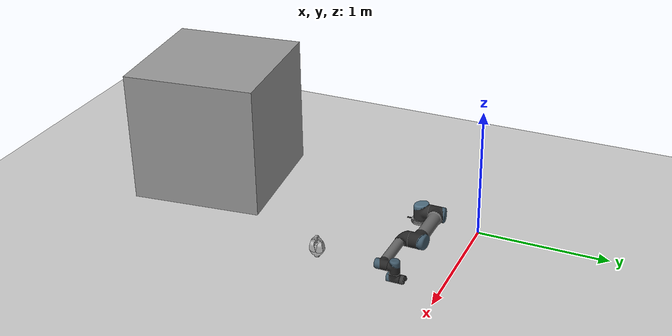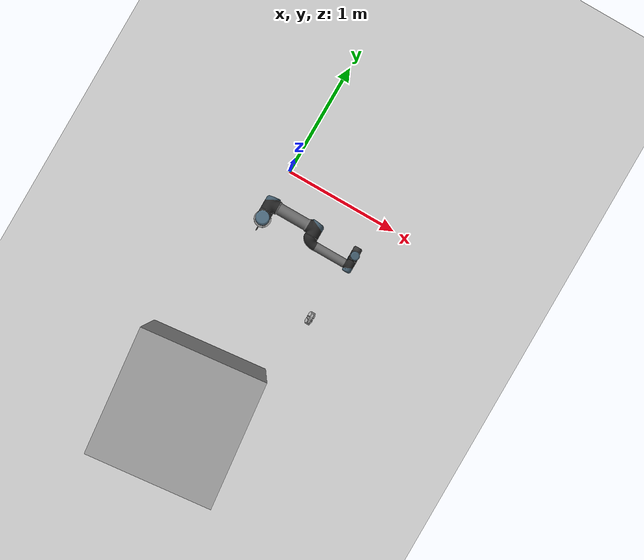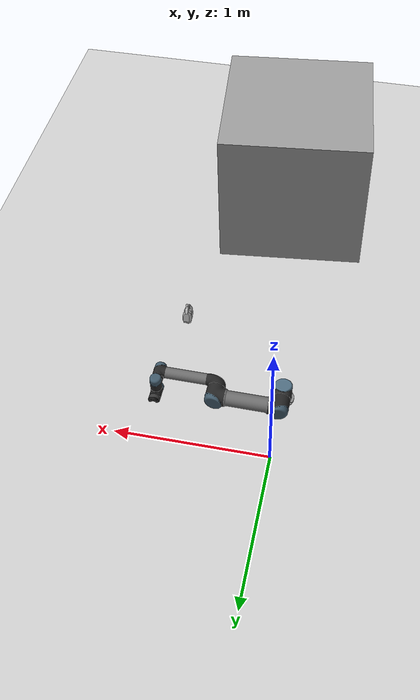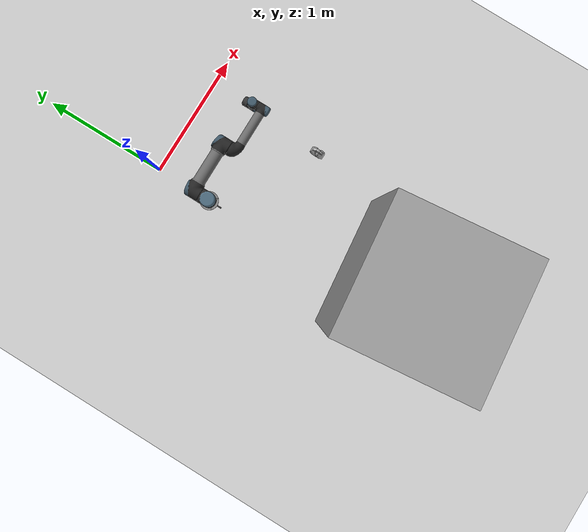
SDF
<sdf version="1.4">
 <world name="default">
  <light name="sun" type="directional">
   <pose>0 0 10 0 -0 0</pose>
   <diffuse>0.8 0.8 0.8 1</diffuse>
   <specular>0.2 0.2 0.2 1</specular>
   <attenuation>
    <range>1000</range>
    <constant>0.9</constant>
    <linear>0.01</linear>
    <quadratic>0.001</quadratic>
   </attenuation>
   <direction>-0.5 0.1 -0.9</direction>
  </light>
  <model name="ground_plane">
   <static>1</static>
   <link name="link">
    <collision name="collision">
     <geometry><plane><normal>0 0 1</normal><size>100 100</size></plane></geometry>
     <surface><friction><ode><mu>100</mu><mu2>50</mu2></ode></friction></surface>
    </collision>
    <visual name="visual">
     <cast_shadows>0</cast_shadows>
     <geometry><plane><normal>0 0 1</normal><size>100 100</size></plane></geometry>
     <material>
      <script><uri>file://media/materials/scripts/gazebo.material</uri><name>Gazebo/Grey</name></script>
     </material>
    </visual>
    <velocity_decay><linear>0</linear><angular>0</angular></velocity_decay>
   </link>
  </model>
  <physics type="ode">
   <max_step_size>0.001</max_step_size>
   <real_time_factor>1</real_time_factor>
   <real_time_update_rate>1000</real_time_update_rate>
   <gravity>0 0 -9.8</gravity>
  </physics>
  <scene><ambient>0.4 0.4 0.4 1</ambient><background>0.7 0.7 0.7 1</background><shadows>1</shadows></scene>
  <spherical_coordinates>
   <surface_model>EARTH_WGS84</surface_model>
   <latitude_deg>0</latitude_deg>
   <longitude_deg>0</longitude_deg>
   <elevation>0</elevation>
   <heading_deg>0</heading_deg>
  </spherical_coordinates>
  <model name="unit_box_1">
   <pose>0.196535 -2.06971 0.655685 -1e-06 -1.32349e-23 0.10661</pose>
   <link name="link">
    <inertial>
     <mass>1</mass>
     <inertia><ixx>1</ixx><ixy>0</ixy><ixz>0</ixz><iyy>1</iyy><iyz>0</iyz><izz>1</izz></inertia>
    </inertial>
    <collision name="collision"><geometry><box><size>0.473142 0.4627 1.31137</size></box></geometry></collision>
    <visual name="visual">
     <geometry><box><size>1 1 1</size></box></geometry>
     <material>
      <script><uri>file://media/materials/scripts/gazebo.material</uri><name>Gazebo/Grey</name></script>
     </material>
    </visual>
    <velocity_decay><linear>0</linear><angular>0</angular></velocity_decay>
   </link>
   <static>0</static>
  </model>
  <model name="ur5">
   <link name="base_link">
    <inertial>
     <mass>4</mass>
     <inertia>
      <ixx>0.00443333</ixx>
      <ixy>0</ixy>
      <ixz>0</ixz>
      <iyy>0.00443333</iyy>
      <iyz>0</iyz>
      <izz>0.0072</izz>
     </inertia>
    </inertial>
    <collision name="base_link_collision">
     <geometry><mesh><scale>1 1 1</scale><uri>model://ur5/meshes/ur5/collision/base.stl</uri></mesh></geometry>
    </collision>
    <visual name="base_link_visual">
     <geometry><mesh><scale>1 1 1</scale><uri>model://ur5/meshes/ur5/visual/Base.dae</uri></mesh></geometry>
    </visual>
    <velocity_decay><linear>0</linear><angular>0</angular></velocity_decay>
   </link>
   <joint name="world_joisnt" type="revolute">
    <child>base_link</child>
    <parent>world</parent>
    <axis>
     <limit><lower>0</lower><upper>0</upper></limit>
     <dynamics><damping>0</damping></dynamics>
     <xyz>0 0 1</xyz>
    </axis>
   </joint>
   <link name="shoulder_link">
    <pose>0 0 0.089159 0 -0 0</pose>
    <inertial>
     <mass>3.7</mass>
     <inertia>
      <ixx>0.0102675</ixx>
      <ixy>0</ixy>
      <ixz>0</ixz>
      <iyy>0.0102675</iyy>
      <iyz>0</iyz>
      <izz>0.00666</izz>
     </inertia>
    </inertial>
    <collision name="shoulder_link_collision">
     <geometry><mesh><scale>1 1 1</scale><uri>model://ur5/meshes/ur5/collision/shoulder.stl</uri></mesh></geometry>
    </collision>
    <visual name="shoulder_link_visual">
     <geometry><mesh><scale>1 1 1</scale><uri>model://ur5/meshes/ur5/visual/Shoulder.dae</uri></mesh></geometry>
    </visual>
    <velocity_decay><linear>0</linear><angular>0</angular></velocity_decay>
   </link>
   <joint name="shoulder_pan_joint" type="revolute">
    <child>shoulder_link</child>
    <parent>base_link</parent>
    <axis>
     <xyz>0 0 1</xyz>
     <limit><lower>-6.28319</lower><upper>6.28319</upper><effort>150</effort><velocity>3.15</velocity></limit>
     <dynamics><damping>0</damping></dynamics>
    </axis>
   </joint>
   <link name="upper_arm_link">
    <pose>0 0.13585 0.089159 3.14159 1.57079 3.14159</pose>
    <inertial>
     <pose>0 0 0.28 0 -0 0</pose>
     <mass>8.393</mass>
     <inertia>
      <ixx>0.226891</ixx>
      <ixy>0</ixy>
      <ixz>0</ixz>
      <iyy>0.226891</iyy>
      <iyz>0</iyz>
      <izz>0.0151074</izz>
     </inertia>
    </inertial>
    <collision name="upper_arm_link_collision">
     <geometry>
      <mesh><scale>1 1 1</scale><uri>model://ur5/meshes/ur5/collision/upper_arm.stl</uri></mesh>
     </geometry>
    </collision>
    <visual name="upper_arm_link_visual">
     <geometry><mesh><scale>1 1 1</scale><uri>model://ur5/meshes/ur5/visual/UpperArm.dae</uri></mesh></geometry>
    </visual>
    <velocity_decay><linear>0</linear><angular>0</angular></velocity_decay>
   </link>
   <joint name="shoulder_lift_joint" type="revolute">
    <child>upper_arm_link</child>
    <parent>shoulder_link</parent>
    <axis>
     <xyz>0 1 0</xyz>
     <limit><lower>-6.28319</lower><upper>6.28319</upper><effort>150</effort><velocity>3.15</velocity></limit>
     <dynamics><damping>0</damping></dynamics>
    </axis>
   </joint>
   <link name="forearm_link">
    <pose>0.425 0.01615 0.089159 3.14159 1.57079 3.14159</pose>
    <inertial>
     <pose>0 0 0.25 0 -0 0</pose>
     <mass>2.275</mass>
     <inertia>
      <ixx>0.0494433</ixx>
      <ixy>0</ixy>
      <ixz>0</ixz>
      <iyy>0.0494433</iyy>
      <iyz>0</iyz>
      <izz>0.004095</izz>
     </inertia>
    </inertial>
    <collision name="forearm_link_collision">
     <geometry><mesh><scale>1 1 1</scale><uri>model://ur5/meshes/ur5/collision/forearm.stl</uri></mesh></geometry>
    </collision>
    <visual name="forearm_link_visual">
     <geometry><mesh><scale>1 1 1</scale><uri>model://ur5/meshes/ur5/visual/Forearm.dae</uri></mesh></geometry>
    </visual>
    <velocity_decay><linear>0</linear><angular>0</angular></velocity_decay>
   </link>
   <joint name="elbow_joint" type="revolute">
    <child>forearm_link</child>
    <parent>upper_arm_link</parent>
    <axis>
     <xyz>0 1 0</xyz>
     <limit><lower>-6.28319</lower><upper>6.28319</upper><effort>150</effort><velocity>3.15</velocity></limit>
     <dynamics><damping>0</damping></dynamics>
    </axis>
   </joint>
   <link name="wrist_1_link">
    <pose>0.81725 0.01615 0.089159 3.14159 3.58979e-09 3.14159</pose>
    <inertial>
     <mass>1.219</mass>
     <inertia>
      <ixx>0.111173</ixx>
      <ixy>0</ixy>
      <ixz>0</ixz>
      <iyy>0.111173</iyy>
      <iyz>0</iyz>
      <izz>0.21942</izz>
     </inertia>
    </inertial>
    <collision name="wrist_1_link_collision">
     <geometry><mesh><scale>1 1 1</scale><uri>model://ur5/meshes/ur5/collision/wrist_1.stl</uri></mesh></geometry>
    </collision>
    <visual name="wrist_1_link_visual">
     <geometry><mesh><scale>1 1 1</scale><uri>model://ur5/meshes/ur5/visual/Wrist1.dae</uri></mesh></geometry>
    </visual>
    <velocity_decay><linear>0</linear><angular>0</angular></velocity_decay>
   </link>
   <joint name="wrist_1_joint" type="revolute">
    <child>wrist_1_link</child>
    <parent>forearm_link</parent>
    <axis>
     <xyz>0 1 0</xyz>
     <limit><lower>-6.28319</lower><upper>6.28319</upper><effort>28</effort><velocity>3.2</velocity></limit>
     <dynamics><damping>0</damping></dynamics>
    </axis>
   </joint>
   <link name="wrist_2_link">
    <pose>0.81725 0.10915 0.089159 3.14159 3.58979e-09 3.14159</pose>
    <inertial>
     <mass>1.219</mass>
     <inertia>
      <ixx>0.111173</ixx>
      <ixy>0</ixy>
      <ixz>0</ixz>
      <iyy>0.111173</iyy>
      <iyz>0</iyz>
      <izz>0.21942</izz>
     </inertia>
    </inertial>
    <collision name="wrist_2_link_collision">
     <geometry><mesh><scale>1 1 1</scale><uri>model://ur5/meshes/ur5/collision/wrist_2.stl</uri></mesh></geometry>
    </collision>
    <visual name="wrist_2_link_visual">
     <geometry><mesh><scale>1 1 1</scale><uri>model://ur5/meshes/ur5/visual/Wrist2.dae</uri></mesh></geometry>
    </visual>
    <velocity_decay><linear>0</linear><angular>0</angular></velocity_decay>
   </link>
   <joint name="wrist_2_joint" type="revolute">
    <child>wrist_2_link</child>
    <parent>wrist_1_link</parent>
    <axis>
     <xyz>0 0 -1</xyz>
     <limit><lower>-6.28319</lower><upper>6.28319</upper><effort>28</effort><velocity>3.2</velocity></limit>
     <dynamics><damping>0</damping></dynamics>
    </axis>
   </joint>
   <link name="wrist_3_link">
    <pose>0.81725 0.10915 -0.005491 3.14159 3.58979e-09 3.14159</pose>
    <inertial>
     <mass>0.1879</mass>
     <inertia>
      <ixx>0.0171365</ixx>
      <ixy>0</ixy>
      <ixz>0</ixz>
      <iyy>0.0171365</iyy>
      <iyz>0</iyz>
      <izz>0.033822</izz>
     </inertia>
    </inertial>
    <collision name="wrist_3_link_collision">
     <geometry><mesh><scale>1 1 1</scale><uri>model://ur5/meshes/ur5/collision/wrist_3.stl</uri></mesh></geometry>
    </collision>
    <collision name="wrist_3_link_collision_ee_link">
     <pose>-1.7949e-11 0.0723 0 0 -0 1.5708</pose>
     <geometry><box><size>0.01 0.01 0.01</size></box></geometry>
    </collision>
    <visual name="wrist_3_link_visual">
     <geometry><mesh><scale>1 1 1</scale><uri>model://ur5/meshes/ur5/visual/Wrist3.dae</uri></mesh></geometry>
    </visual>
    <velocity_decay><linear>0</linear><angular>0</angular></velocity_decay>
   </link>
   <joint name="wrist_3_joint" type="revolute">
    <child>wrist_3_link</child>
    <parent>wrist_2_link</parent>
    <axis>
     <xyz>0 1 0</xyz>
     <limit><lower>-6.28319</lower><upper>6.28319</upper><effort>28</effort><velocity>3.2</velocity></limit>
     <dynamics><damping>0</damping></dynamics>
    </axis>
   </joint>
   <static>0</static>
   <plugin name="ros_control" filename="libgazebo_ros_control.so"/>
   <pose>-0.001677 -0.457375 0.002264 -0.00538 -0.012113 0.000129</pose>
  </model>
  <model name="pr2_gripper">
   <pose>1.54297 -0.785836 -0.795795 2.35749 -1.57079 -2.35203</pose>
   <link name="r_wrist_roll_link">
    <pose>0.771 -0.188 0.790675 0 -0 0</pose>
    <inertial>
     <pose>0.056408 0.000451 -0.001014 0 -0 0</pose>
     <inertia>
      <ixx>0.011352</ixx>
      <ixy>-1.6e-05</ixy>
      <ixz>-1e-06</ixz>
      <iyy>0.011677</iyy>
      <iyz>-1e-06</iyz>
      <izz>0.011866</izz>
     </inertia>
     <mass>0.68107</mass>
    </inertial>
    <collision name="r_wrist_roll_link_geom">
     <geometry>
      <mesh>
       <uri>model://pr2/meshes/forearm_v0/wrist_roll_L.stl</uri>
       <scale>1 1 1</scale>
       <uri>__default__</uri>
      </mesh>
     </geometry>
     <surface>
      <friction><ode><mu>-1</mu><mu2>-1</mu2><fdir1>0 0 0</fdir1><slip1>0</slip1><slip2>0</slip2></ode></friction>
      <bounce><restitution_coefficient>0</restitution_coefficient><threshold>100000</threshold></bounce>
      <contact>
       <ode>
        <soft_cfm>0</soft_cfm>
        <soft_erp>0.2</soft_erp>
        <kp>1e+12</kp>
        <kd>1</kd>
        <max_vel>0</max_vel>
        <min_depth>0.001</min_depth>
       </ode>
      </contact>
     </surface>
    </collision>
    <visual name="r_wrist_roll_link_geom_visual">
     <geometry>
      <mesh><uri>model://pr2/meshes/forearm_v0/wrist_roll.stl</uri><scale>1 1 1</scale><uri>__default__</uri></mesh>
     </geometry>
     <material><script><name>__default__</name><uri>__default__</uri></script></material>
    </visual>
    <visual name="r_wrist_roll_link_geom_r_gripper_palm_link_visual">
     <geometry>
      <mesh>
       <uri>model://pr2/meshes/gripper_v0/gripper_palm.dae</uri>
       <scale>1 1 1</scale>
       <uri>__default__</uri>
      </mesh>
     </geometry>
    </visual>
    <velocity_decay><linear>0</linear><angular>0</angular></velocity_decay>
   </link>
   <link name="r_gripper_l_finger_link">
    <pose>0.84791 -0.178 0.790675 0 -0 0</pose>
    <inertial>
     <pose>0.03598 0.0173 -0.00164 0 -0 0</pose>
     <inertia>
      <ixx>7.8e-05</ixx>
      <ixy>1e-06</ixy>
      <ixz>-1e-05</ixz>
      <iyy>0.000197</iyy>
      <iyz>-3e-06</iyz>
      <izz>0.000181</izz>
     </inertia>
     <mass>0.17126</mass>
    </inertial>
    <collision name="r_gripper_l_finger_link_geom">
     <geometry>
      <mesh><uri>model://pr2/meshes/gripper_v0/l_finger.stl</uri><scale>1 1 1</scale><uri>__default__</uri></mesh>
     </geometry>
     <surface>
      <friction><ode><mu>500</mu><mu2>500</mu2><fdir1>0 0 0</fdir1><slip1>0</slip1><slip2>0</slip2></ode></friction>
      <bounce><restitution_coefficient>0</restitution_coefficient><threshold>100000</threshold></bounce>
      <contact>
       <ode>
        <soft_cfm>0</soft_cfm>
        <soft_erp>0.2</soft_erp>
        <kp>1e+06</kp>
        <kd>1</kd>
        <max_vel>0</max_vel>
        <min_depth>0.001</min_depth>
       </ode>
      </contact>
     </surface>
    </collision>
    <visual name="r_gripper_l_finger_link_geom_visual">
     <geometry>
      <mesh><uri>model://pr2/meshes/gripper_v0/l_finger.dae</uri><scale>1 1 1</scale><uri>__default__</uri></mesh>
     </geometry>
    </visual>
    <velocity_decay><linear>0</linear><angular>0</angular></velocity_decay>
   </link>
   <link name="r_gripper_l_finger_tip_link">
    <pose>0.93928 -0.17305 0.790675 0 -0 0</pose>
    <inertial>
     <pose>0.00423 0.00284 0 0 -0 0</pose>
     <inertia><ixx>8e-06</ixx><ixy>6e-06</ixy><ixz>0</ixz><iyy>1e-05</iyy><iyz>0</iyz><izz>1.5e-05</izz></inertia>
     <mass>0.04419</mass>
    </inertial>
    <collision name="r_gripper_l_finger_tip_link_geom">
     <geometry>
      <mesh>
       <uri>model://pr2/meshes/gripper_v0/l_finger_tip.stl</uri>
       <scale>1 1 1</scale>
       <uri>__default__</uri>
      </mesh>
     </geometry>
     <surface>
      <friction><ode><mu>500</mu><mu2>500</mu2><fdir1>0 0 0</fdir1><slip1>0</slip1><slip2>0</slip2></ode></friction>
      <bounce><restitution_coefficient>0</restitution_coefficient><threshold>100000</threshold></bounce>
      <contact>
       <ode>
        <soft_cfm>0</soft_cfm>
        <soft_erp>0.2</soft_erp>
        <kp>1e+07</kp>
        <kd>1</kd>
        <max_vel>0</max_vel>
        <min_depth>0.001</min_depth>
       </ode>
      </contact>
     </surface>
    </collision>
    <visual name="r_gripper_l_finger_tip_link_geom_visual">
     <geometry>
      <mesh>
       <uri>model://pr2/meshes/gripper_v0/l_finger_tip.dae</uri>
       <scale>1 1 1</scale>
       <uri>__default__</uri>
      </mesh>
     </geometry>
    </visual>
    <sensor name="r_gripper_l_finger_tip_contact_sensor" type="contact">
     <contact><collision>r_gripper_l_finger_tip_link_geom</collision><topic>__default_topic__</topic></contact>
     <always_on>0</always_on>
     <update_rate>100</update_rate>
     <visualize>0</visualize>
    </sensor>
    <velocity_decay><linear>0</linear><angular>0</angular></velocity_decay>
   </link>
   <link name="r_gripper_motor_slider_link">
    <pose>0.93928 -0.188 0.790675 0 -0 0</pose>
    <inertial>
     <inertia><ixx>0.001</ixx><ixy>0</ixy><ixz>0</ixz><iyy>0.001</iyy><iyz>0</iyz><izz>0.001</izz></inertia>
     <mass>0.01</mass>
    </inertial>
    <velocity_decay><linear>0</linear><angular>0</angular></velocity_decay>
   </link>
   <link name="r_gripper_motor_screw_link">
    <pose>0.93928 -0.188 0.790675 0 -0 0</pose>
    <inertial>
     <inertia><ixx>0.0001</ixx><ixy>0</ixy><ixz>0</ixz><iyy>0.0001</iyy><iyz>0</iyz><izz>0.0001</izz></inertia>
     <mass>0.01</mass>
    </inertial>
    <velocity_decay><linear>0</linear><angular>0</angular></velocity_decay>
   </link>
   <link name="r_gripper_r_finger_link">
    <pose>0.84791 -0.198 0.790675 0 -0 0</pose>
    <inertial>
     <pose>0.03576 -0.01736 -0.00095 0 -0 0</pose>
     <inertia>
      <ixx>7.7e-05</ixx>
      <ixy>-2e-06</ixy>
      <ixz>-8e-06</ixz>
      <iyy>0.000198</iyy>
      <iyz>2e-06</iyz>
      <izz>0.000181</izz>
     </inertia>
     <mass>0.17389</mass>
    </inertial>
    <collision name="r_gripper_r_finger_link_geom">
     <pose>0 0 0 -3.14159 -0 0</pose>
     <geometry>
      <mesh><uri>model://pr2/meshes/gripper_v0/l_finger.stl</uri><scale>1 1 1</scale><uri>__default__</uri></mesh>
     </geometry>
     <surface>
      <friction><ode><mu>500</mu><mu2>500</mu2><fdir1>0 0 0</fdir1><slip1>0</slip1><slip2>0</slip2></ode></friction>
      <bounce><restitution_coefficient>0</restitution_coefficient><threshold>100000</threshold></bounce>
      <contact>
       <ode>
        <soft_cfm>0</soft_cfm>
        <soft_erp>0.2</soft_erp>
        <kp>1e+06</kp>
        <kd>1</kd>
        <max_vel>0</max_vel>
        <min_depth>0.001</min_depth>
       </ode>
      </contact>
     </surface>
    </collision>
    <visual name="r_gripper_r_finger_link_geom_visual">
     <pose>0 0 0 -3.14159 0 0</pose>
     <geometry>
      <mesh><uri>model://pr2/meshes/gripper_v0/l_finger.dae</uri><scale>1 1 1</scale><uri>__default__</uri></mesh>
     </geometry>
    </visual>
    <velocity_decay><linear>0</linear><angular>0</angular></velocity_decay>
   </link>
   <link name="r_gripper_r_finger_tip_link">
    <pose>0.93928 -0.20295 0.790675 0 -0 0</pose>
    <inertial>
     <pose>0.00423 -0.00284 0 0 -0 0</pose>
     <inertia><ixx>8e-06</ixx><ixy>-6e-06</ixy><ixz>0</ixz><iyy>1e-05</iyy><iyz>0</iyz><izz>1.5e-05</izz></inertia>
     <mass>0.04419</mass>
    </inertial>
    <collision name="r_gripper_r_finger_tip_link_geom">
     <pose>0 0 0 -3.14159 -0 0</pose>
     <geometry>
      <mesh>
       <uri>model://pr2/meshes/gripper_v0/l_finger_tip.stl</uri>
       <scale>1 1 1</scale>
       <uri>__default__</uri>
      </mesh>
     </geometry>
     <surface>
      <friction><ode><mu>500</mu><mu2>500</mu2><fdir1>0 0 0</fdir1><slip1>0</slip1><slip2>0</slip2></ode></friction>
      <bounce><restitution_coefficient>0</restitution_coefficient><threshold>100000</threshold></bounce>
      <contact>
       <ode>
        <soft_cfm>0</soft_cfm>
        <soft_erp>0.2</soft_erp>
        <kp>1e+07</kp>
        <kd>1</kd>
        <max_vel>0</max_vel>
        <min_depth>0.001</min_depth>
       </ode>
      </contact>
     </surface>
    </collision>
    <visual name="r_gripper_r_finger_tip_link_geom_visual">
     <pose>0 0 0 -3.14159 0 0</pose>
     <geometry>
      <mesh>
       <uri>model://pr2/meshes/gripper_v0/l_finger_tip.dae</uri>
       <scale>1 1 1</scale>
       <uri>__default__</uri>
      </mesh>
     </geometry>
    </visual>
    <sensor name="r_gripper_r_finger_tip_contact_sensor" type="contact">
     <contact><collision>r_gripper_r_finger_tip_link_geom</collision><topic>__default_topic__</topic></contact>
     <always_on>0</always_on>
     <update_rate>100</update_rate>
     <visualize>0</visualize>
    </sensor>
    <velocity_decay><linear>0</linear><angular>0</angular></velocity_decay>
   </link>
   <link name="torso_lift_motor_screw_link">
    <pose>-0.15 0 0.751 0 -0 0</pose>
    <inertial>
     <inertia><ixx>0.001</ixx><ixy>0</ixy><ixz>0</ixz><iyy>0.001</iyy><iyz>0</iyz><izz>0.001</izz></inertia>
     <mass>1</mass>
    </inertial>
    <velocity_decay><linear>0</linear><angular>0</angular></velocity_decay>
   </link>
   <link name="r_gripper_l_parallel_link">
    <pose>0.82991 -0.157 0.790675 0 -0 0</pose>
    <inertial>
     <pose>0.03598 0.0173 -0.00164 0 -0 0</pose>
     <inertia>
      <ixx>7.8e-05</ixx>
      <ixy>1e-06</ixy>
      <ixz>-1e-05</ixz>
      <iyy>0.000197</iyy>
      <iyz>-3e-06</iyz>
      <izz>0.000181</izz>
     </inertia>
     <mass>0.17126</mass>
    </inertial>
    <velocity_decay><linear>0</linear><angular>0</angular></velocity_decay>
   </link>
   <link name="r_gripper_r_parallel_link">
    <pose>0.82991 -0.219 0.790675 0 -0 0</pose>
    <inertial>
     <pose>0.03576 -0.01736 -0.00095 0 -0 0</pose>
     <inertia>
      <ixx>7.7e-05</ixx>
      <ixy>-2e-06</ixy>
      <ixz>-8e-06</ixz>
      <iyy>0.000198</iyy>
      <iyz>2e-06</iyz>
      <izz>0.000181</izz>
     </inertia>
     <mass>0.17389</mass>
    </inertial>
    <velocity_decay><linear>0</linear><angular>0</angular></velocity_decay>
   </link>
   <joint name="r_gripper_l_finger_joint" type="revolute">
    <parent>r_wrist_roll_link</parent>
    <child>r_gripper_l_finger_link</child>
    <axis>
     <dynamics><damping>0.02</damping><friction>0</friction></dynamics>
     <limit><lower>0</lower><upper>0.548</upper><effort>0</effort><velocity>0</velocity></limit>
     <xyz>0 0 1</xyz>
    </axis>
   </joint>
   <joint name="r_gripper_l_finger_tip_joint" type="revolute">
    <parent>r_gripper_l_finger_link</parent>
    <child>r_gripper_l_finger_tip_link</child>
    <axis>
     <dynamics><damping>0.001</damping><friction>0</friction></dynamics>
     <limit><lower>0</lower><upper>0.548</upper><effort>0</effort><velocity>0</velocity></limit>
     <xyz>0 0 -1</xyz>
    </axis>
   </joint>
   <joint name="r_gripper_motor_slider_joint" type="prismatic">
    <parent>r_wrist_roll_link</parent>
    <child>r_gripper_motor_slider_link</child>
    <axis>
     <dynamics><damping>0</damping><friction>0</friction></dynamics>
     <limit><lower>-0.1</lower><upper>0.1</upper><effort>0</effort><velocity>0</velocity></limit>
     <xyz>1 0 0</xyz>
    </axis>
   </joint>
   <joint name="r_gripper_motor_screw_joint" type="revolute">
    <parent>r_gripper_motor_slider_link</parent>
    <child>r_gripper_motor_screw_link</child>
    <axis>
     <dynamics><damping>0.0001</damping><friction>0</friction></dynamics>
     <limit><lower>-1e+16</lower><upper>1e+16</upper><effort>0</effort><velocity>0</velocity></limit>
     <xyz>0 1 0</xyz>
    </axis>
   </joint>
   <joint name="r_gripper_r_finger_joint" type="revolute">
    <parent>r_wrist_roll_link</parent>
    <child>r_gripper_r_finger_link</child>
    <axis>
     <dynamics><damping>0.02</damping><friction>0</friction></dynamics>
     <limit><lower>0</lower><upper>0.548</upper><effort>0</effort><velocity>0</velocity></limit>
     <xyz>0 0 -1</xyz>
    </axis>
   </joint>
   <joint name="r_gripper_r_finger_tip_joint" type="revolute">
    <parent>r_gripper_r_finger_link</parent>
    <child>r_gripper_r_finger_tip_link</child>
    <axis>
     <dynamics><damping>0.001</damping><friction>0</friction></dynamics>
     <limit><lower>0</lower><upper>0.548</upper><effort>0</effort><velocity>0</velocity></limit>
     <xyz>0 0 1</xyz>
    </axis>
   </joint>
   <joint name="r_gripper_r_screw_screw_joint" type="screw">
    <parent>r_gripper_r_finger_tip_link</parent>
    <child>r_gripper_motor_screw_link</child>
    <thread_pitch>-3141.6</thread_pitch>
    <axis>
     <dynamics><damping>0</damping><friction>0</friction></dynamics>
     <limit><lower>-1e+16</lower><upper>1e+16</upper><effort>0</effort><velocity>0</velocity></limit>
     <xyz>0 1 0</xyz>
    </axis>
   </joint>
   <joint name="r_gripper_l_screw_screw_joint" type="screw">
    <parent>r_gripper_l_finger_tip_link</parent>
    <child>r_gripper_motor_screw_link</child>
    <thread_pitch>3141.6</thread_pitch>
    <axis>
     <dynamics><damping>0</damping><friction>0</friction></dynamics>
     <limit><lower>-1e+16</lower><upper>1e+16</upper><effort>0</effort><velocity>0</velocity></limit>
     <xyz>0 1 0</xyz>
    </axis>
   </joint>
   <joint name="r_gripper_r_parallel_root_joint" type="revolute">
    <pose>0.05891 -0.031 0 0 -0 0</pose>
    <parent>r_gripper_r_parallel_link</parent>
    <child>r_wrist_roll_link</child>
    <axis>
     <dynamics><damping>0.2</damping><friction>0</friction></dynamics>
     <limit><lower>-1e+16</lower><upper>1e+16</upper><effort>0</effort><velocity>0</velocity></limit>
     <xyz>0 0 -1</xyz>
    </axis>
   </joint>
   <joint name="r_gripper_l_parallel_root_joint" type="revolute">
    <pose>0.05891 0.031 0 0 -0 0</pose>
    <parent>r_gripper_l_parallel_link</parent>
    <child>r_wrist_roll_link</child>
    <axis>
     <dynamics><damping>0.2</damping><friction>0</friction></dynamics>
     <limit><lower>-1e+16</lower><upper>1e+16</upper><effort>0</effort><velocity>0</velocity></limit>
     <xyz>0 0 1</xyz>
    </axis>
   </joint>
   <joint name="r_gripper_r_parallel_tip_joint" type="revolute">
    <pose>-0.018 -0.021 0 0 -0 0</pose>
    <parent>r_gripper_r_parallel_link</parent>
    <child>r_gripper_r_finger_tip_link</child>
    <axis>
     <dynamics><damping>0</damping><friction>0</friction></dynamics>
     <limit><lower>-1e+16</lower><upper>1e+16</upper><effort>0</effort><velocity>0</velocity></limit>
     <xyz>0 0 1</xyz>
    </axis>
   </joint>
   <joint name="r_gripper_l_parallel_tip_joint" type="revolute">
    <pose>-0.018 0.021 0 0 -0 0</pose>
    <parent>r_gripper_l_parallel_link</parent>
    <child>r_gripper_l_finger_tip_link</child>
    <axis>
     <dynamics><damping>0</damping><friction>0</friction></dynamics>
     <limit><lower>-1e+16</lower><upper>1e+16</upper><effort>0</effort><velocity>0</velocity></limit>
     <xyz>0 0 1</xyz>
    </axis>
   </joint>
   <joint name="r_gripper_joint" type="prismatic">
    <parent>r_gripper_r_finger_tip_link</parent>
    <child>r_gripper_l_finger_tip_link</child>
    <axis>
     <dynamics><damping>0</damping><friction>0</friction></dynamics>
     <limit><lower>-1e+16</lower><upper>1e+16</upper><effort>0</effort><velocity>0</velocity></limit>
     <xyz>0 1 0</xyz>
    </axis>
   </joint>
   <static>0</static>
  </model>
  <joint name="arm_gripper_joint" type="revolute">
   <parent>ur5::wrist_3_link</parent>
   <child>pr2_gripper::r_wrist_roll_link</child>
   <axis><limit><lower>0</lower><upper>0</upper></limit><xyz>0 1 0</xyz></axis>
  </joint>
  <joint name="arm_box_joint" type="revolute">
   <parent>unit_box_1::link</parent>
   <child>ur5::base_link</child>
   <axis><limit><lower>0</lower><upper>0</upper></limit><xyz>0 1 0</xyz></axis>
  </joint>
 </world>
</sdf>
